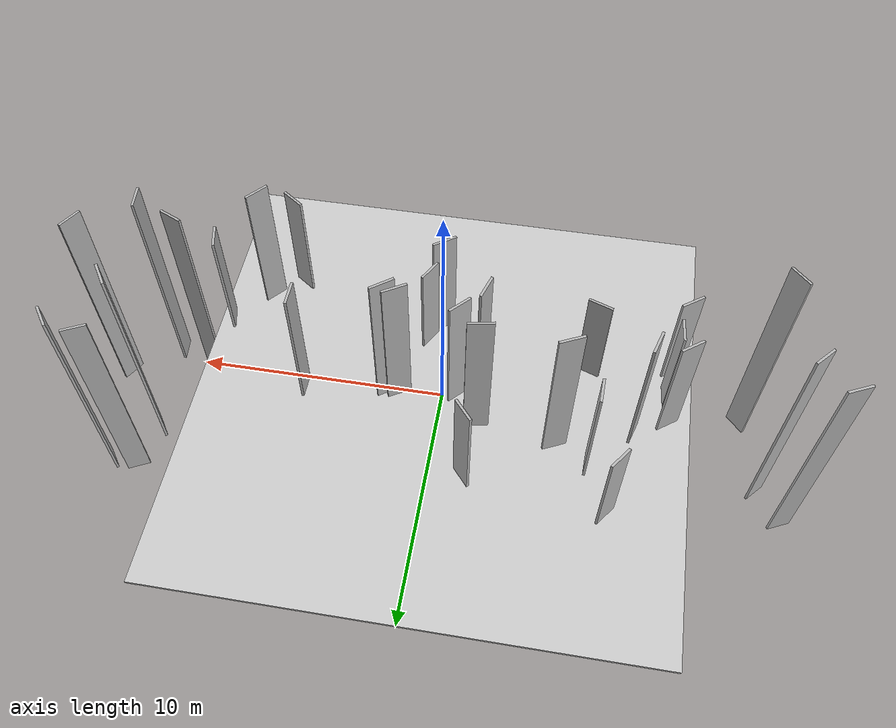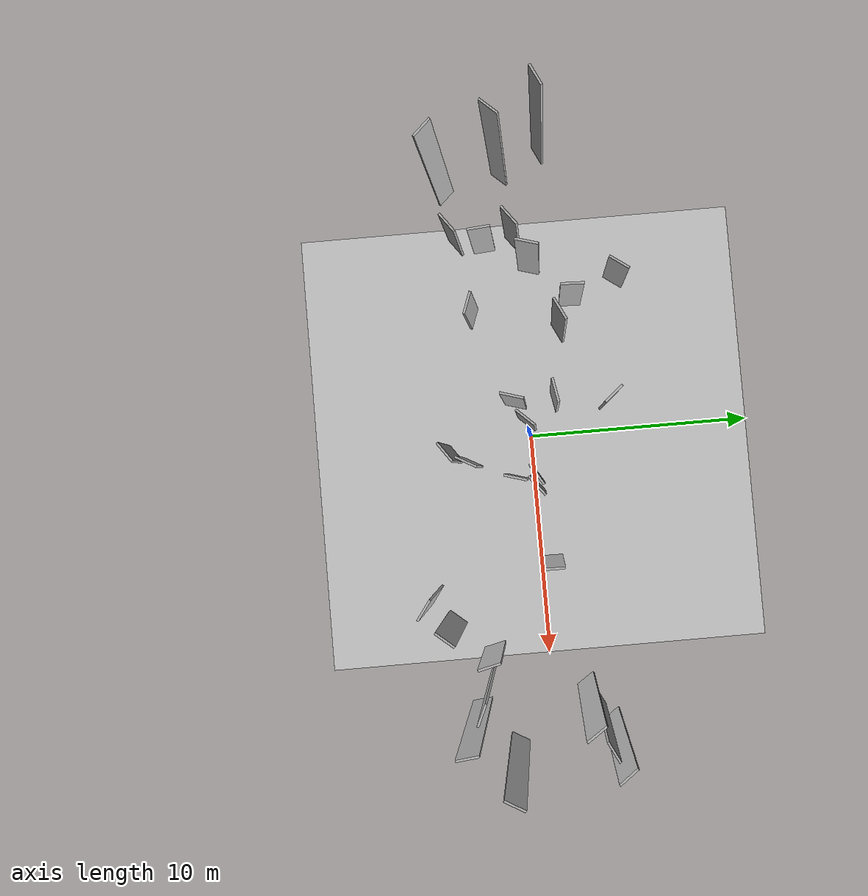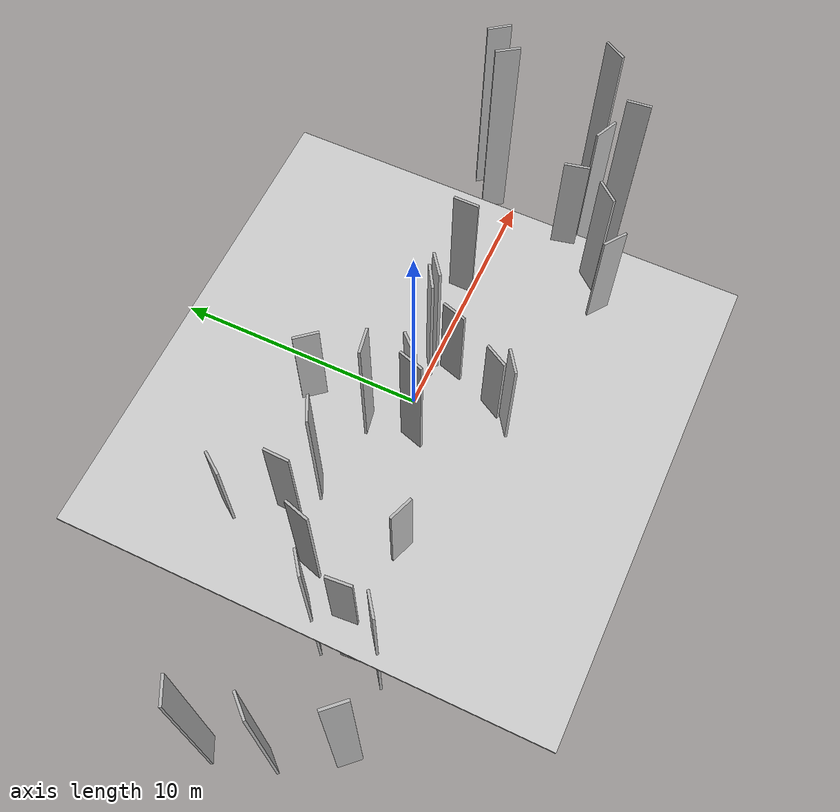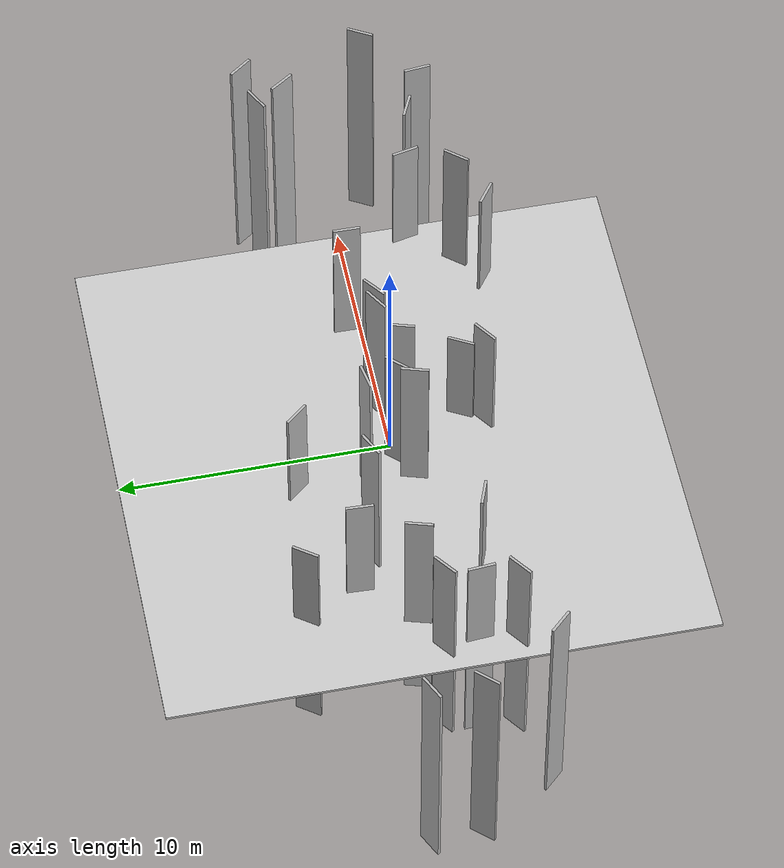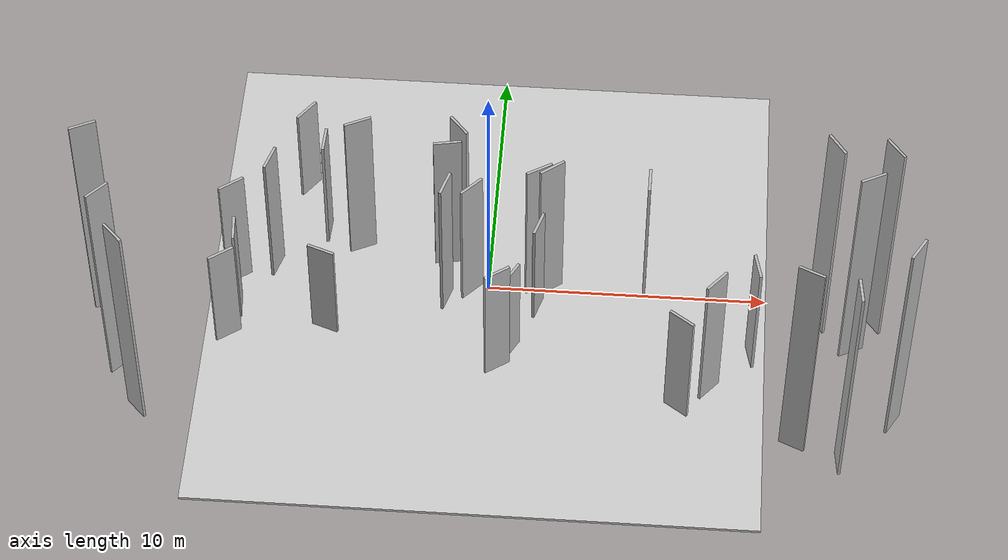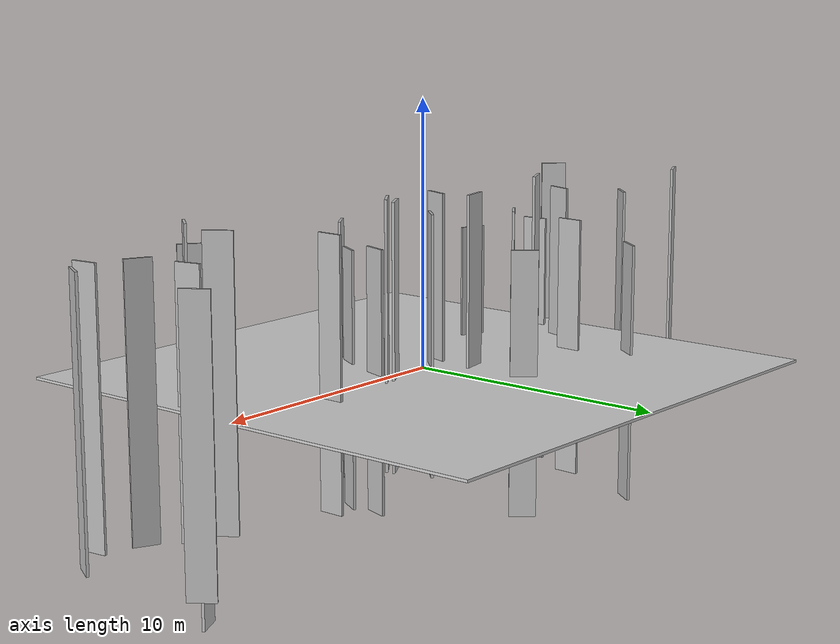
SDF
<?xml version="1.0"?>
<sdf version="1.8">
<world name="map">
    <physics name="1ms" type="ignored">
        <max_step_size>0.001</max_step_size>
        <real_time_factor>1.0</real_time_factor>
    </physics>

    <plugin filename="libgz-sim-physics-system.so" name="gz::sim::systems::Physics" />
    <plugin filename="libgz-sim-sensors-system.so" name="gz::sim::systems::Sensors">
        <render_engine>ogre2</render_engine>
    </plugin>
    <plugin filename="libgz-sim-contact-system" name="gz::sim::systems::Contact" />
    <plugin filename="libgz-sim-imu-system" name="gz::sim::systems::Imu" />
    <plugin filename="libgz-sim-scene-broadcaster-system.so" name="gz::sim::systems::SceneBroadcaster" />
    <plugin filename="libgz-sim-user-commands-system.so" name="gz::sim::systems::UserCommands" />

    <!-- sun and ground -->
    <light type="directional" name="sun">
        <cast_shadows>true</cast_shadows>
        <pose>0 0 10 0 0 0</pose>
        <diffuse>0.8 0.8 0.8 1</diffuse>
        <specular>0.2 0.2 0.2 1</specular>
        <attenuation>
        <range>1000</range>
        <constant>0.9</constant>
        <linear>0.01</linear>
        <quadratic>0.001</quadratic>
        </attenuation>
        <direction>-0.5 0.1 -0.9</direction>
    </light>

    <model name="ground_plane">
        <static>true</static>
        <link name="link">
            <pose>0 0 -0.05 0 0 0</pose>
            <collision name="collision">
                <geometry>
                    <box>
                        <size>50 50 0.1</size>
                    </box>
                </geometry>
            </collision>
            <visual name="visual">
                <geometry>
                    <box>
                        <size>20 20 0.1</size>
                    </box>
                </geometry>
                <material>
                    <ambient>0.8 0.8 0.8 1</ambient>
                    <diffuse>0.8 0.8 0.8 1</diffuse>
                    <specular>0.8 0.8 0.8 1</specular>
                </material>
            </visual>
        </link>
    </model>

    <!-- obstacles -->
    <model name="rod20">
        <pose>-0.5962195651248301 -0.13511467152719003 0.7509072292105516 0.0 0.0 -2.322969249595137</pose>
        <static>true</static>
            <link name="body">
                <visual name="visual">
                    <geometry>
                        <box>
                            <size>1.0 0.1 10.0</size>
                        </box>
                    </geometry>
                </visual>
                <collision name="collision">
                    <geometry>
                        <box>
                            <size>1.0 0.1 10.0</size>
                        </box>
                    </geometry>
                </collision>
            </link>
    </model>

    <model name="rod21">
        <pose>6.929399558452296 -4.968608688917902 0.08197182604034947 0.0 0.0 2.518176501528531</pose>
        <static>true</static>
            <link name="body">
                <visual name="visual">
                    <geometry>
                        <box>
                            <size>1.0 0.1 10.0</size>
                        </box>
                    </geometry>
                </visual>
                <collision name="collision">
                    <geometry>
                        <box>
                            <size>1.0 0.1 10.0</size>
                        </box>
                    </geometry>
                </collision>
            </link>
    </model>

    <model name="rod22">
        <pose>12.03782852466339 1.629299434217791 1.9628220508638439 0.0 0.0 2.1672310481837966</pose>
        <static>true</static>
            <link name="body">
                <visual name="visual">
                    <geometry>
                        <box>
                            <size>1.0 0.1 10.0</size>
                        </box>
                    </geometry>
                </visual>
                <collision name="collision">
                    <geometry>
                        <box>
                            <size>1.0 0.1 10.0</size>
                        </box>
                    </geometry>
                </collision>
            </link>
    </model>

    <model name="rod23">
        <pose>-1.326404483557992 3.6456382028918934 -0.32533797054061675 0.0 0.0 2.266616831586777</pose>
        <static>true</static>
            <link name="body">
                <visual name="visual">
                    <geometry>
                        <box>
                            <size>1.0 0.1 10.0</size>
                        </box>
                    </geometry>
                </visual>
                <collision name="collision">
                    <geometry>
                        <box>
                            <size>1.0 0.1 10.0</size>
                        </box>
                    </geometry>
                </collision>
            </link>
    </model>

    <model name="rod24">
        <pose>-1.5320243106310194 1.176988305104234 1.4795079391196184 0.0 0.0 -2.9603563123912044</pose>
        <static>true</static>
            <link name="body">
                <visual name="visual">
                    <geometry>
                        <box>
                            <size>1.0 0.1 10.0</size>
                        </box>
                    </geometry>
                </visual>
                <collision name="collision">
                    <geometry>
                        <box>
                            <size>1.0 0.1 10.0</size>
                        </box>
                    </geometry>
                </collision>
            </link>
    </model>

    <model name="rod25">
        <pose>-1.4755717037993623 -0.593762355271938 1.3618353953104219 0.0 0.0 1.272454173530316</pose>
        <static>true</static>
            <link name="body">
                <visual name="visual">
                    <geometry>
                        <box>
                            <size>1.0 0.1 10.0</size>
                        </box>
                    </geometry>
                </visual>
                <collision name="collision">
                    <geometry>
                        <box>
                            <size>1.0 0.1 10.0</size>
                        </box>
                    </geometry>
                </collision>
            </link>
    </model>

    <model name="rod26">
        <pose>14.938996435316405 -1.8723082614284872 0.7204933290662239 0.0 0.0 1.047825092516458</pose>
        <static>true</static>
            <link name="body">
                <visual name="visual">
                    <geometry>
                        <box>
                            <size>1.0 0.1 10.0</size>
                        </box>
                    </geometry>
                </visual>
                <collision name="collision">
                    <geometry>
                        <box>
                            <size>1.0 0.1 10.0</size>
                        </box>
                    </geometry>
                </collision>
            </link>
    </model>

    <model name="rod27">
        <pose>0.9810349273095529 -2.8030351578807924 -0.6686929281344867 0.0 0.0 -2.0749010520516857</pose>
        <static>true</static>
            <link name="body">
                <visual name="visual">
                    <geometry>
                        <box>
                            <size>1.0 0.1 10.0</size>
                        </box>
                    </geometry>
                </visual>
                <collision name="collision">
                    <geometry>
                        <box>
                            <size>1.0 0.1 10.0</size>
                        </box>
                    </geometry>
                </collision>
            </link>
    </model>

    <model name="rod28">
        <pose>8.047487761845215 -4.089605032699679 1.111174542131518 0.0 0.0 -2.2676884181221855</pose>
        <static>true</static>
            <link name="body">
                <visual name="visual">
                    <geometry>
                        <box>
                            <size>1.0 0.1 10.0</size>
                        </box>
                    </geometry>
                </visual>
                <collision name="collision">
                    <geometry>
                        <box>
                            <size>1.0 0.1 10.0</size>
                        </box>
                    </geometry>
                </collision>
            </link>
    </model>

    <model name="rod29">
        <pose>-8.863330744700301 -1.4468232685773543 -0.6275973847753499 0.0 0.0 -1.490455685157367</pose>
        <static>true</static>
            <link name="body">
                <visual name="visual">
                    <geometry>
                        <box>
                            <size>1.0 0.1 10.0</size>
                        </box>
                    </geometry>
                </visual>
                <collision name="collision">
                    <geometry>
                        <box>
                            <size>1.0 0.1 10.0</size>
                        </box>
                    </geometry>
                </collision>
            </link>
    </model>

    <model name="rod30">
        <pose>0.5281687146927112 -3.563891884314354 0.2566651800652111 0.0 0.0 -2.534004889268199</pose>
        <static>true</static>
            <link name="body">
                <visual name="visual">
                    <geometry>
                        <box>
                            <size>1.0 0.1 10.0</size>
                        </box>
                    </geometry>
                </visual>
                <collision name="collision">
                    <geometry>
                        <box>
                            <size>1.0 0.1 10.0</size>
                        </box>
                    </geometry>
                </collision>
            </link>
    </model>

    <model name="rod31">
        <pose>13.527893393997587 2.35195097172738 -0.5029062205876375 0.0 0.0 -2.6723814034518307</pose>
        <static>true</static>
            <link name="body">
                <visual name="visual">
                    <geometry>
                        <box>
                            <size>1.0 0.1 10.0</size>
                        </box>
                    </geometry>
                </visual>
                <collision name="collision">
                    <geometry>
                        <box>
                            <size>1.0 0.1 10.0</size>
                        </box>
                    </geometry>
                </collision>
            </link>
    </model>

    <model name="rod32">
        <pose>-14.493531667866325 1.4836936226957764 1.0504842894467692 0.0 0.0 -2.6891523662036887</pose>
        <static>true</static>
            <link name="body">
                <visual name="visual">
                    <geometry>
                        <box>
                            <size>1.0 0.1 10.0</size>
                        </box>
                    </geometry>
                </visual>
                <collision name="collision">
                    <geometry>
                        <box>
                            <size>1.0 0.1 10.0</size>
                        </box>
                    </geometry>
                </collision>
            </link>
    </model>

    <model name="rod33">
        <pose>14.221235037305703 2.806416295344895 0.5976217941411215 0.0 0.0 -0.9308893908626747</pose>
        <static>true</static>
            <link name="body">
                <visual name="visual">
                    <geometry>
                        <box>
                            <size>1.0 0.1 10.0</size>
                        </box>
                    </geometry>
                </visual>
                <collision name="collision">
                    <geometry>
                        <box>
                            <size>1.0 0.1 10.0</size>
                        </box>
                    </geometry>
                </collision>
            </link>
    </model>

    <model name="rod34">
        <pose>9.464129073874297 -2.479849411999826 0.06804912862293966 0.0 0.0 1.7913612659166747</pose>
        <static>true</static>
            <link name="body">
                <visual name="visual">
                    <geometry>
                        <box>
                            <size>1.0 0.1 10.0</size>
                        </box>
                    </geometry>
                </visual>
                <collision name="collision">
                    <geometry>
                        <box>
                            <size>1.0 0.1 10.0</size>
                        </box>
                    </geometry>
                </collision>
            </link>
    </model>

    <model name="rod35">
        <pose>1.753414926585645 0.14926306755197682 1.513708097569248 0.0 0.0 -2.593044774296912</pose>
        <static>true</static>
            <link name="body">
                <visual name="visual">
                    <geometry>
                        <box>
                            <size>1.0 0.1 10.0</size>
                        </box>
                    </geometry>
                </visual>
                <collision name="collision">
                    <geometry>
                        <box>
                            <size>1.0 0.1 10.0</size>
                        </box>
                    </geometry>
                </collision>
            </link>
    </model>

    <model name="rod36">
        <pose>-5.72268801180568 -2.196006616010232 -0.6605869257015842 0.0 0.0 -0.35169293339406416</pose>
        <static>true</static>
            <link name="body">
                <visual name="visual">
                    <geometry>
                        <box>
                            <size>1.0 0.1 10.0</size>
                        </box>
                    </geometry>
                </visual>
                <collision name="collision">
                    <geometry>
                        <box>
                            <size>1.0 0.1 10.0</size>
                        </box>
                    </geometry>
                </collision>
            </link>
    </model>

    <model name="rod37">
        <pose>1.8129315623545104 -0.7715574093258901 -0.3043233296916129 0.0 0.0 1.2757844614339184</pose>
        <static>true</static>
            <link name="body">
                <visual name="visual">
                    <geometry>
                        <box>
                            <size>1.0 0.1 10.0</size>
                        </box>
                    </geometry>
                </visual>
                <collision name="collision">
                    <geometry>
                        <box>
                            <size>1.0 0.1 10.0</size>
                        </box>
                    </geometry>
                </collision>
            </link>
    </model>

    <model name="rod38">
        <pose>11.300437843830338 -2.9156994011833195 0.439402228842912 0.0 0.0 2.7144378255702346</pose>
        <static>true</static>
            <link name="body">
                <visual name="visual">
                    <geometry>
                        <box>
                            <size>1.0 0.1 10.0</size>
                        </box>
                    </geometry>
                </visual>
                <collision name="collision">
                    <geometry>
                        <box>
                            <size>1.0 0.1 10.0</size>
                        </box>
                    </geometry>
                </collision>
            </link>
    </model>

    <model name="rod39">
        <pose>-12.718258907566714 -3.337356039801244 1.0228187308064616 0.0 0.0 -0.8140245279609744</pose>
        <static>true</static>
            <link name="body">
                <visual name="visual">
                    <geometry>
                        <box>
                            <size>1.0 0.1 10.0</size>
                        </box>
                    </geometry>
                </visual>
                <collision name="collision">
                    <geometry>
                        <box>
                            <size>1.0 0.1 10.0</size>
                        </box>
                    </geometry>
                </collision>
            </link>
    </model>

    <model name="rod40">
        <pose>12.974031564950891 -3.6466257361296073 0.47412985431328813 0.0 0.0 -1.463357355122578</pose>
        <static>true</static>
            <link name="body">
                <visual name="visual">
                    <geometry>
                        <box>
                            <size>1.0 0.1 10.0</size>
                        </box>
                    </geometry>
                </visual>
                <collision name="collision">
                    <geometry>
                        <box>
                            <size>1.0 0.1 10.0</size>
                        </box>
                    </geometry>
                </collision>
            </link>
    </model>

    <model name="rod41">
        <pose>5.601326898222137 0.4764138660187536 0.8712678889281813 0.0 0.0 1.562581659428127</pose>
        <static>true</static>
            <link name="body">
                <visual name="visual">
                    <geometry>
                        <box>
                            <size>1.0 0.1 10.0</size>
                        </box>
                    </geometry>
                </visual>
                <collision name="collision">
                    <geometry>
                        <box>
                            <size>1.0 0.1 10.0</size>
                        </box>
                    </geometry>
                </collision>
            </link>
    </model>

    <model name="rod42">
        <pose>-7.731632322998876 0.5378197791360995 0.9302068148249139 0.0 0.0 1.2823340913115668</pose>
        <static>true</static>
            <link name="body">
                <visual name="visual">
                    <geometry>
                        <box>
                            <size>1.0 0.1 10.0</size>
                        </box>
                    </geometry>
                </visual>
                <collision name="collision">
                    <geometry>
                        <box>
                            <size>1.0 0.1 10.0</size>
                        </box>
                    </geometry>
                </collision>
            </link>
    </model>

    <model name="rod43">
        <pose>-4.717017306762694 1.6255869493657205 1.8368237713193891 0.0 0.0 -2.6887828952330244</pose>
        <static>true</static>
            <link name="body">
                <visual name="visual">
                    <geometry>
                        <box>
                            <size>1.0 0.1 10.0</size>
                        </box>
                    </geometry>
                </visual>
                <collision name="collision">
                    <geometry>
                        <box>
                            <size>1.0 0.1 10.0</size>
                        </box>
                    </geometry>
                </collision>
            </link>
    </model>

    <model name="rod44">
        <pose>-6.921619205483182 4.39650412623225 -0.7667814580173424 0.0 0.0 0.9482561774872469</pose>
        <static>true</static>
            <link name="body">
                <visual name="visual">
                    <geometry>
                        <box>
                            <size>1.0 0.1 10.0</size>
                        </box>
                    </geometry>
                </visual>
                <collision name="collision">
                    <geometry>
                        <box>
                            <size>1.0 0.1 10.0</size>
                        </box>
                    </geometry>
                </collision>
            </link>
    </model>

    <model name="rod45">
        <pose>-13.781696566147026 -0.5808151078382098 -0.014401837199860545 0.0 0.0 0.8326496469368907</pose>
        <static>true</static>
            <link name="body">
                <visual name="visual">
                    <geometry>
                        <box>
                            <size>1.0 0.1 10.0</size>
                        </box>
                    </geometry>
                </visual>
                <collision name="collision">
                    <geometry>
                        <box>
                            <size>1.0 0.1 10.0</size>
                        </box>
                    </geometry>
                </collision>
            </link>
    </model>

    <model name="rod46">
        <pose>-9.144203978249736 -2.7542637956913563 -0.4716439055405778 0.0 0.0 -2.5124296859696456</pose>
        <static>true</static>
            <link name="body">
                <visual name="visual">
                    <geometry>
                        <box>
                            <size>1.0 0.1 10.0</size>
                        </box>
                    </geometry>
                </visual>
                <collision name="collision">
                    <geometry>
                        <box>
                            <size>1.0 0.1 10.0</size>
                        </box>
                    </geometry>
                </collision>
            </link>
    </model>

    <model name="rod47">
        <pose>2.20531374267898173 0.1331506878960944 1.6596842464267314 0.0 0.0 0.6488818501499161</pose>
        <static>true</static>
            <link name="body">
                <visual name="visual">
                    <geometry>
                        <box>
                            <size>1.0 0.1 10.0</size>
                        </box>
                    </geometry>
                </visual>
                <collision name="collision">
                    <geometry>
                        <box>
                            <size>1.0 0.1 10.0</size>
                        </box>
                    </geometry>
                </collision>
            </link>
    </model>

    <model name="rod48">
        <pose>-9.067880314704436 -0.10843742114654731 0.17501888523026143 0.0 0.0 -2.498883953108616</pose>
        <static>true</static>
            <link name="body">
                <visual name="visual">
                    <geometry>
                        <box>
                            <size>1.0 0.1 10.0</size>
                        </box>
                    </geometry>
                </visual>
                <collision name="collision">
                    <geometry>
                        <box>
                            <size>1.0 0.1 10.0</size>
                        </box>
                    </geometry>
                </collision>
            </link>
    </model>

    <model name="rod49">
        <pose>-6.0173494361436966 2.2875695961350493 0.06963172566113696 0.0 0.0 1.5325039511558511</pose>
        <static>true</static>
            <link name="body">
                <visual name="visual">
                    <geometry>
                        <box>
                            <size>1.0 0.1 10.0</size>
                        </box>
                    </geometry>
                </visual>
                <collision name="collision">
                    <geometry>
                        <box>
                            <size>1.0 0.1 10.0</size>
                        </box>
                    </geometry>
                </collision>
            </link>
    </model>

</world>
</sdf>
